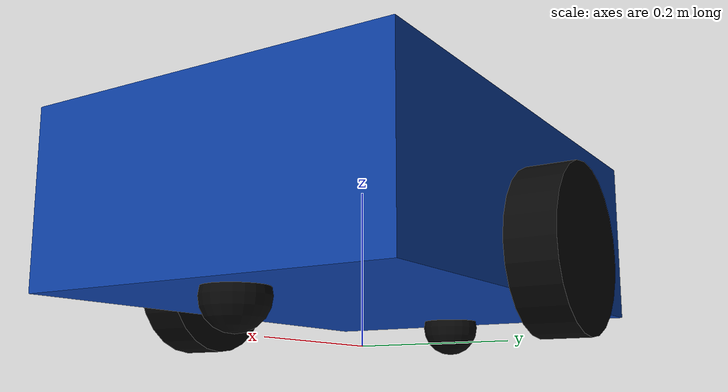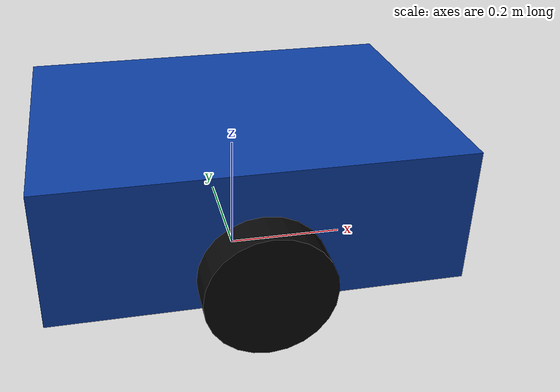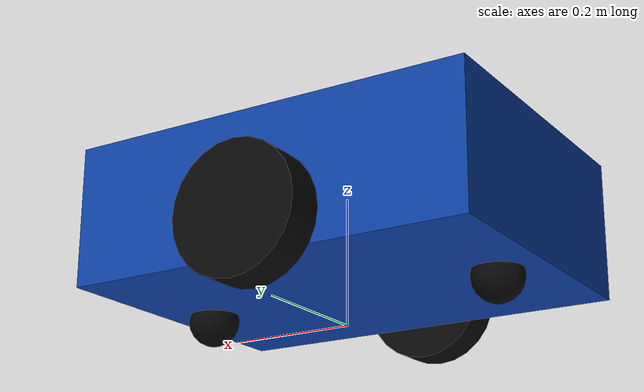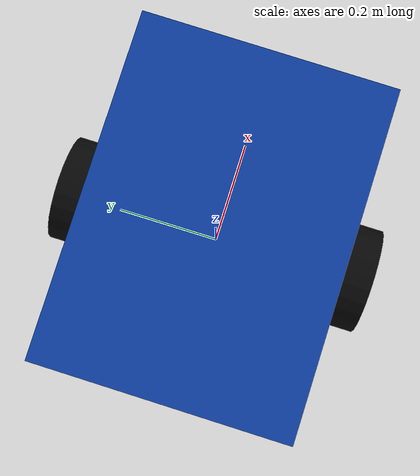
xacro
<?xml version="1.0"?>
<robot xmlns:xacro="http://www.ros.org/wiki/xacro" name="amr">
  <xacro:arg name="prefix" default=""/>
  <xacro:arg name="namespace" default="amr_01"/>
  <xacro:property name="p" value="$(arg prefix)"/>
  <xacro:property name="ns" value="$(arg namespace)"/>

  <material name="blue"><color rgba="0.05 0.25 0.65 1"/></material>
  <material name="black"><color rgba="0.03 0.03 0.03 1"/></material>

  <link name="${p}base_footprint"/>
  <link name="${p}base_link">
    <visual><origin xyz="0 0 0.16"/><geometry><box size="0.65 0.48 0.22"/></geometry><material name="blue"/></visual>
    <collision><origin xyz="0 0 0.16"/><geometry><box size="0.65 0.48 0.22"/></geometry></collision>
    <inertial><origin xyz="0 0 0.16"/><mass value="35"/><inertia ixx="1.0" ixy="0" ixz="0" iyy="1.0" iyz="0" izz="1.0"/></inertial>
  </link>
  <joint name="${p}base_footprint_joint" type="fixed"><parent link="${p}base_footprint"/><child link="${p}base_link"/></joint>

  <xacro:macro name="wheel" params="side y">
    <link name="${p}${side}_wheel">
      <visual><origin rpy="${pi/2} 0 0"/><geometry><cylinder radius="0.10" length="0.06"/></geometry><material name="black"/></visual>
      <collision><origin rpy="${pi/2} 0 0"/><geometry><cylinder radius="0.10" length="0.06"/></geometry></collision>
      <inertial><mass value="1"/><inertia ixx="0.01" iyy="0.01" izz="0.01" ixy="0" ixz="0" iyz="0"/></inertial>
    </link>
    <joint name="${p}${side}_wheel_joint" type="continuous"><parent link="${p}base_link"/><child link="${p}${side}_wheel"/><origin xyz="0 ${y} 0.10"/><axis xyz="0 1 0"/></joint>
  </xacro:macro>
  <xacro:wheel side="left" y="0.27"/>
  <xacro:wheel side="right" y="-0.27"/>

  <xacro:macro name="caster" params="end x">
    <link name="${p}${end}_caster">
      <visual><geometry><sphere radius="0.04"/></geometry><material name="black"/></visual>
      <collision><geometry><sphere radius="0.04"/></geometry></collision>
      <inertial><mass value="0.1"/><inertia ixx="0.000064" ixy="0" ixz="0" iyy="0.000064" iyz="0" izz="0.000064"/></inertial>
    </link>
    <joint name="${p}${end}_caster_joint" type="fixed"><parent link="${p}base_link"/><child link="${p}${end}_caster"/><origin xyz="${x} 0 0.04"/></joint>
    <gazebo reference="${p}${end}_caster"><mu1>0.01</mu1><mu2>0.01</mu2></gazebo>
  </xacro:macro>
  <xacro:caster end="front" x="0.25"/>
  <xacro:caster end="rear" x="-0.25"/>

  <gazebo reference="${p}base_link"><mu1>0.8</mu1><mu2>0.8</mu2></gazebo>
  <gazebo reference="${p}left_wheel"><mu1>1.0</mu1><mu2>1.0</mu2></gazebo>
  <gazebo reference="${p}right_wheel"><mu1>1.0</mu1><mu2>1.0</mu2></gazebo>
  <gazebo>
    <plugin filename="gz-sim-velocity-control-system" name="gz::sim::systems::VelocityControl">
      <topic>/${ns}/cmd_vel</topic>
      <initial_linear>0 0 0</initial_linear>
      <initial_angular>0 0 0</initial_angular>
    </plugin>
    <plugin filename="gz-sim-odometry-publisher-system" name="gz::sim::systems::OdometryPublisher">
      <dimensions>2</dimensions>
      <odom_topic>/${ns}/odom</odom_topic>
      <tf_topic>/${ns}/tf</tf_topic>
      <odom_frame>${ns}/odom</odom_frame>
      <robot_base_frame>${ns}/base_footprint</robot_base_frame>
      <odom_publish_frequency>30</odom_publish_frequency>
    </plugin>
  </gazebo>
</robot>
